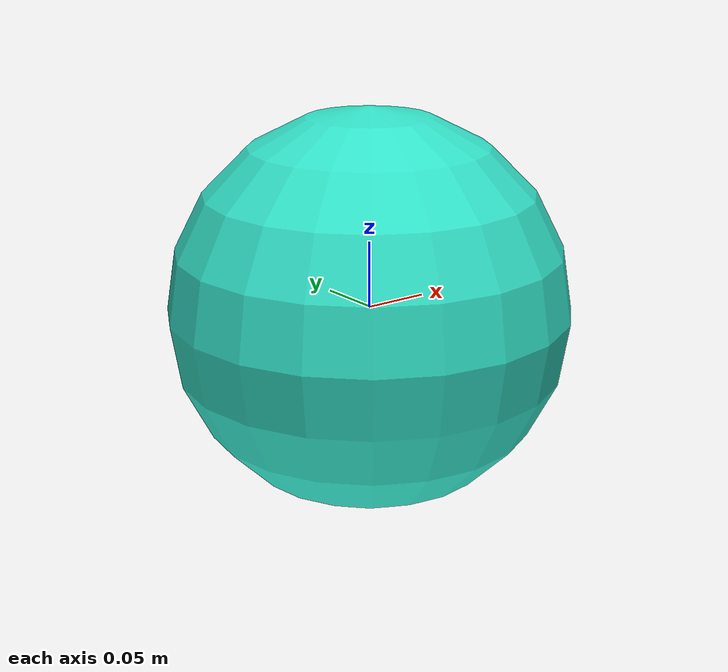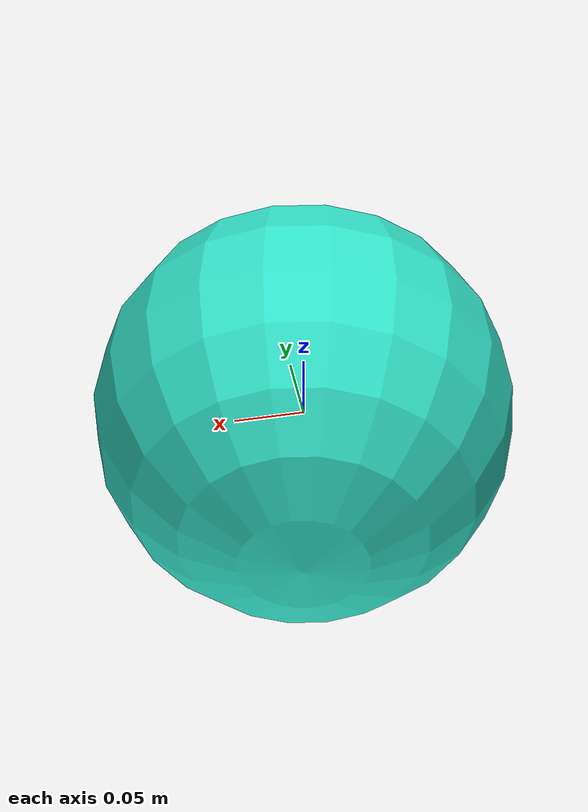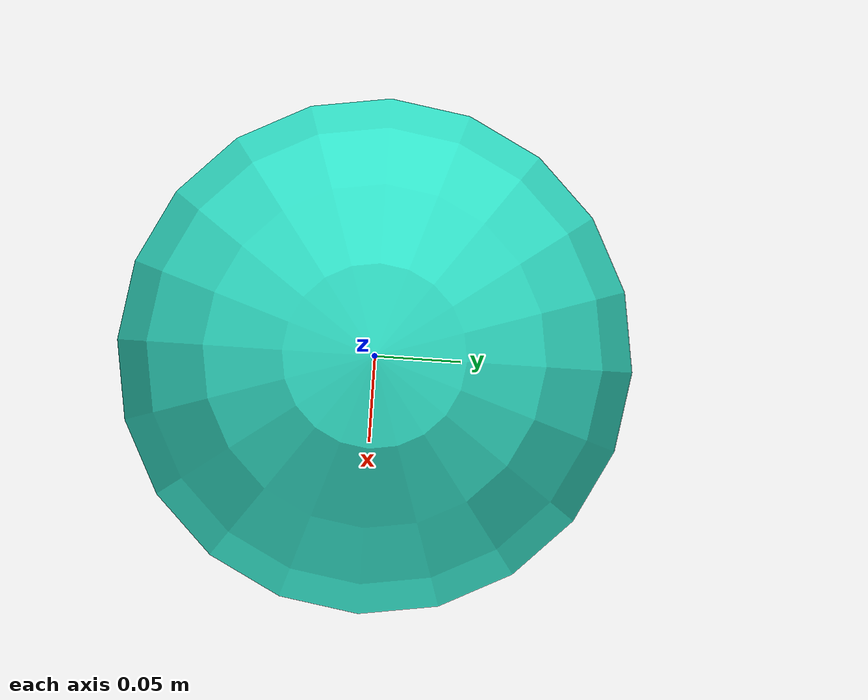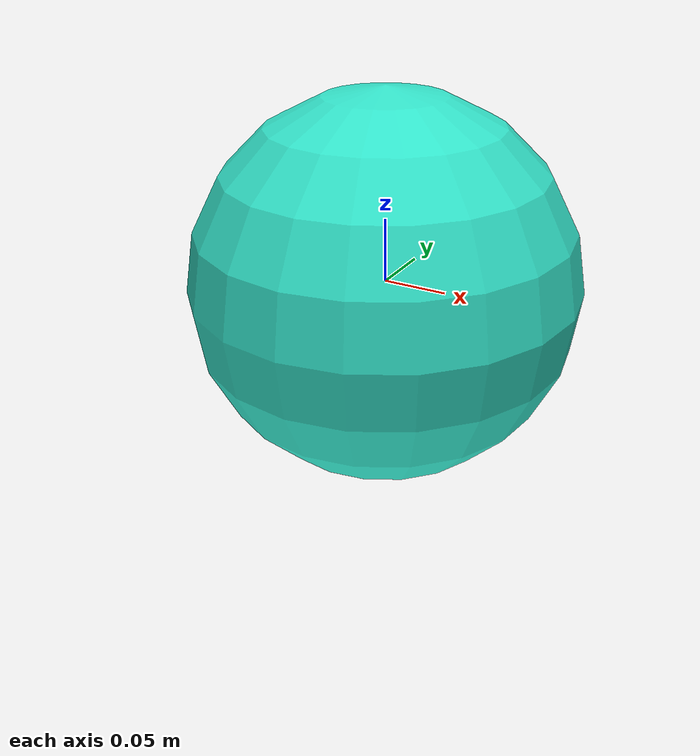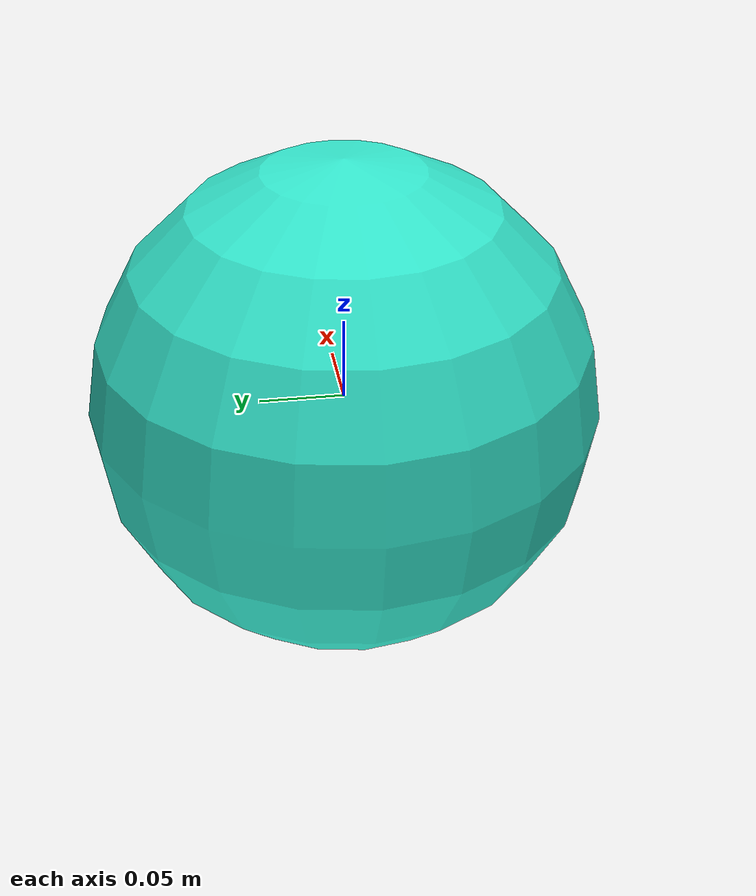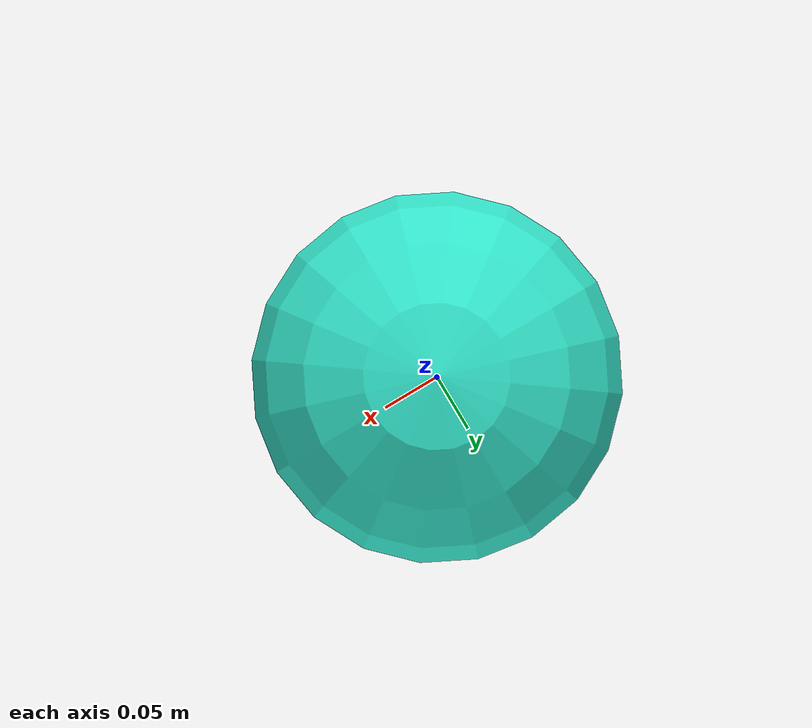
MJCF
<mujoco model="sphere">
  <option integrator="implicitfast" timestep="0.005" gravity="0 0 -9.81"/>
  <size memory="1000M" nuser_site="6"/>
  <compiler coordinate="local"/>

  <worldbody>
    <light cutoff="30" pos="0 1 1" dir="0 -1 -2"/>
    <light cutoff="30" pos="0 -1 1" dir="0 1 -2"/>

    <!-- Sphere: radius 0.15m, cyan for visibility -->
    <body name="sphere" pos="0 0 0">
      <freejoint name="sphere_root"/>
      <geom type="sphere" contype="1" conaffinity="1" density="100"
            rgba="0.20 0.90 0.80 1"
            solimp="0.9 0.95 0.001" friction="0.8 0.005 0.0001"
            solref="0.02 1" priority="0" margin="0" condim="3" group="0"
            size="0.15"
            name="sphere"/>
      <site name="sphere_site" pos="0 0 0" size="0.005" rgba="1 0 0 1" type="sphere"/>
    </body>
  </worldbody>

  <tendon/>
  <actuator/>
  <contact/>
  <equality/>
  <asset/>
</mujoco>
